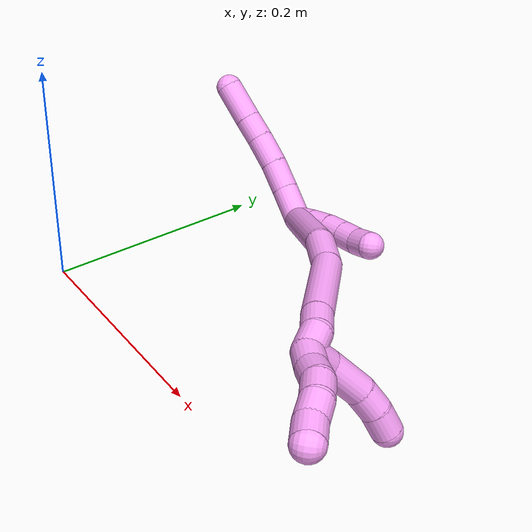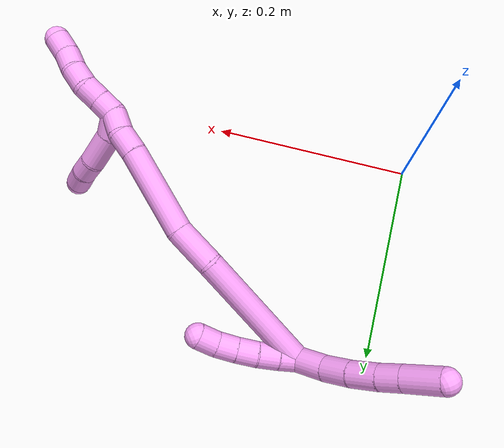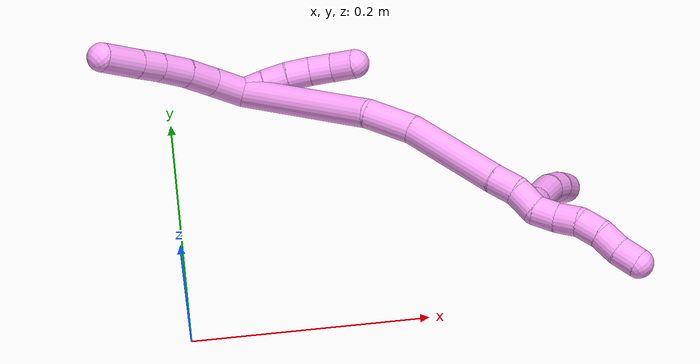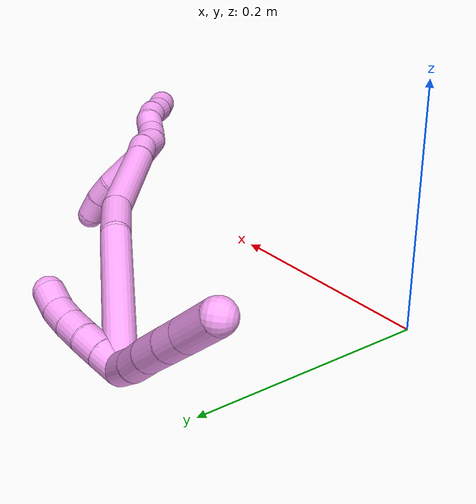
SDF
<sdf version="1.7">
 <world name="default">
  <model name="bin">
   <static>1</static>
   <link name="bottom">
    <collision name="collision-bottom">
     <pose>0 0 -0.01 0 -0 0</pose>
     <geometry><box><size>0.8 0.6 0.02</size></box></geometry>
     <surface>
      <friction><ode><mu>100</mu><mu2>100</mu2></ode></friction>
      <contact><collide_bitmask>65535</collide_bitmask></contact>
     </surface>
    </collision>
   </link>
   <link name="west_wall">
    <collision name="collision-west_wall">
     <pose>-0.41 0 0.1 0 -0 0</pose>
     <geometry><box><size>0.02 0.6 0.2</size></box></geometry>
     <surface>
      <friction><ode><mu>100</mu><mu2>100</mu2></ode></friction>
      <contact><collide_bitmask>65535</collide_bitmask></contact>
     </surface>
    </collision>
   </link>
   <link name="east_wall">
    <collision name="collision-east_wall">
     <pose>0.41 0 0.1 0 -0 0</pose>
     <geometry><box><size>0.02 0.6 0.2</size></box></geometry>
     <surface>
      <friction><ode><mu>100</mu><mu2>100</mu2></ode></friction>
      <contact><collide_bitmask>65535</collide_bitmask></contact>
     </surface>
    </collision>
   </link>
   <link name="south_wall">
    <collision name="collision-south_wall">
     <pose>0 -0.31 0.1 0 -0 0</pose>
     <geometry><box><size>0.8 0.02 0.2</size></box></geometry>
     <surface>
      <friction><ode><mu>100</mu><mu2>100</mu2></ode></friction>
      <contact><collide_bitmask>65535</collide_bitmask></contact>
     </surface>
    </collision>
   </link>
   <link name="north_wall">
    <collision name="collision-north_wall">
     <pose>0 0.31 0.1 0 -0 0</pose>
     <geometry><box><size>0.8 0.02 0.2</size></box></geometry>
     <surface>
      <friction><ode><mu>100</mu><mu2>100</mu2></ode></friction>
      <contact><collide_bitmask>65535</collide_bitmask></contact>
     </surface>
    </collision>
   </link>
  </model>
  <model name="4">
   <static>0</static>
   <link name="4">
    <collision name="collision-cylinder-e_1_2_8">
     <pose>-0.012102 -0.006817 -0.00883 2.48415 -0.82609 -1.81885</pose>
     <geometry><cylinder><radius>0.0125</radius><length>0.032919</length></cylinder></geometry>
     <surface>
      <friction><ode><mu>1.16</mu><mu2>1.16</mu2><slip1>0</slip1><slip2>0</slip2></ode></friction>
      <contact><ode><kp>1e+06</kp><kd>1</kd><max_vel>0</max_vel><min_depth>0.001</min_depth></ode></contact>
     </surface>
    </collision>
    <visual name="visual-cylinder-e_1_2_8">
     <pose>-0.012102 -0.006817 -0.00883 2.48415 -0.82609 -1.81885</pose>
     <geometry><cylinder><radius>0.0125</radius><length>0.032919</length></cylinder></geometry>
     <material><ambient>1 0.65098 0.996078 1</ambient></material>
    </visual>
    <collision name="collision-cylinder-e_2_8_9">
     <pose>-0.033482 -0.020969 -0.025174 2.36824 -0.723651 -1.49781</pose>
     <geometry><cylinder><radius>0.0125</radius><length>0.028022</length></cylinder></geometry>
     <surface>
      <friction><ode><mu>1.16</mu><mu2>1.16</mu2><slip1>0</slip1><slip2>0</slip2></ode></friction>
      <contact><ode><kp>1e+06</kp><kd>1</kd><max_vel>0</max_vel><min_depth>0.001</min_depth></ode></contact>
     </surface>
    </collision>
    <visual name="visual-cylinder-e_2_8_9">
     <pose>-0.033482 -0.020969 -0.025174 2.36824 -0.723651 -1.49781</pose>
     <geometry><cylinder><radius>0.0125</radius><length>0.028022</length></cylinder></geometry>
     <material><ambient>1 0.65098 0.996078 1</ambient></material>
    </visual>
    <collision name="collision-cylinder-e_3_9_10">
     <pose>-0.051571 -0.035864 -0.041495 2.4322 -0.649322 -1.47528</pose>
     <geometry><cylinder><radius>0.0125</radius><length>0.029149</length></cylinder></geometry>
     <surface>
      <friction><ode><mu>1.16</mu><mu2>1.16</mu2><slip1>0</slip1><slip2>0</slip2></ode></friction>
      <contact><ode><kp>1e+06</kp><kd>1</kd><max_vel>0</max_vel><min_depth>0.001</min_depth></ode></contact>
     </surface>
    </collision>
    <visual name="visual-cylinder-e_3_9_10">
     <pose>-0.051571 -0.035864 -0.041495 2.4322 -0.649322 -1.47528</pose>
     <geometry><cylinder><radius>0.0125</radius><length>0.029149</length></cylinder></geometry>
     <material><ambient>1 0.65098 0.996078 1</ambient></material>
    </visual>
    <collision name="collision-cylinder-e_4_10_11">
     <pose>-0.06666 -0.04948 -0.057444 2.43835 -0.59058 -1.38452</pose>
     <geometry><cylinder><radius>0.0125</radius><length>0.022543</length></cylinder></geometry>
     <surface>
      <friction><ode><mu>1.16</mu><mu2>1.16</mu2><slip1>0</slip1><slip2>0</slip2></ode></friction>
      <contact><ode><kp>1e+06</kp><kd>1</kd><max_vel>0</max_vel><min_depth>0.001</min_depth></ode></contact>
     </surface>
    </collision>
    <visual name="visual-cylinder-e_4_10_11">
     <pose>-0.06666 -0.04948 -0.057444 2.43835 -0.59058 -1.38452</pose>
     <geometry><cylinder><radius>0.0125</radius><length>0.022543</length></cylinder></geometry>
     <material><ambient>1 0.65098 0.996078 1</ambient></material>
    </visual>
    <collision name="collision-cylinder-e_5_11_6">
     <pose>-0.083596 -0.065568 -0.076195 2.42892 -0.607136 -1.39915</pose>
     <geometry><cylinder><radius>0.0125</radius><length>0.037367</length></cylinder></geometry>
     <surface>
      <friction><ode><mu>1.16</mu><mu2>1.16</mu2><slip1>0</slip1><slip2>0</slip2></ode></friction>
      <contact><ode><kp>1e+06</kp><kd>1</kd><max_vel>0</max_vel><min_depth>0.001</min_depth></ode></contact>
     </surface>
    </collision>
    <visual name="visual-cylinder-e_5_11_6">
     <pose>-0.083596 -0.065568 -0.076195 2.42892 -0.607136 -1.39915</pose>
     <geometry><cylinder><radius>0.0125</radius><length>0.037367</length></cylinder></geometry>
     <material><ambient>1 0.65098 0.996078 1</ambient></material>
    </visual>
    <collision name="collision-cylinder-e_1_2_12">
     <pose>0.003689 -0.003235 0.008714 0.355448 0.377821 0.068656</pose>
     <geometry><cylinder><radius>0.0125</radius><length>0.02</length></cylinder></geometry>
     <surface>
      <friction><ode><mu>1.16</mu><mu2>1.16</mu2><slip1>0</slip1><slip2>0</slip2></ode></friction>
      <contact><ode><kp>1e+06</kp><kd>1</kd><max_vel>0</max_vel><min_depth>0.001</min_depth></ode></contact>
     </surface>
    </collision>
    <visual name="visual-cylinder-e_1_2_12">
     <pose>0.003689 -0.003235 0.008714 0.355448 0.377821 0.068656</pose>
     <geometry><cylinder><radius>0.0125</radius><length>0.02</length></cylinder></geometry>
     <material><ambient>1 0.65098 0.996078 1</ambient></material>
    </visual>
    <collision name="collision-cylinder-e_2_12_13">
     <pose>0.011648 -0.009406 0.02598 0.330716 0.441165 0.074805</pose>
     <geometry><cylinder><radius>0.0125</radius><length>0.02</length></cylinder></geometry>
     <surface>
      <friction><ode><mu>1.16</mu><mu2>1.16</mu2><slip1>0</slip1><slip2>0</slip2></ode></friction>
      <contact><ode><kp>1e+06</kp><kd>1</kd><max_vel>0</max_vel><min_depth>0.001</min_depth></ode></contact>
     </surface>
    </collision>
    <visual name="visual-cylinder-e_2_12_13">
     <pose>0.011648 -0.009406 0.02598 0.330716 0.441165 0.074805</pose>
     <geometry><cylinder><radius>0.0125</radius><length>0.02</length></cylinder></geometry>
     <material><ambient>1 0.65098 0.996078 1</ambient></material>
    </visual>
    <collision name="collision-cylinder-e_3_13_14">
     <pose>0.021166 -0.014751 0.042697 0.286893 0.552476 0.081847</pose>
     <geometry><cylinder><radius>0.0125</radius><length>0.02</length></cylinder></geometry>
     <surface>
      <friction><ode><mu>1.16</mu><mu2>1.16</mu2><slip1>0</slip1><slip2>0</slip2></ode></friction>
      <contact><ode><kp>1e+06</kp><kd>1</kd><max_vel>0</max_vel><min_depth>0.001</min_depth></ode></contact>
     </surface>
    </collision>
    <visual name="visual-cylinder-e_3_13_14">
     <pose>0.021166 -0.014751 0.042697 0.286893 0.552476 0.081847</pose>
     <geometry><cylinder><radius>0.0125</radius><length>0.02</length></cylinder></geometry>
     <material><ambient>1 0.65098 0.996078 1</ambient></material>
    </visual>
    <collision name="collision-cylinder-e_4_14_15">
     <pose>0.032017 -0.020014 0.058636 0.351888 0.594784 0.108866</pose>
     <geometry><cylinder><radius>0.0125</radius><length>0.02</length></cylinder></geometry>
     <surface>
      <friction><ode><mu>1.16</mu><mu2>1.16</mu2><slip1>0</slip1><slip2>0</slip2></ode></friction>
      <contact><ode><kp>1e+06</kp><kd>1</kd><max_vel>0</max_vel><min_depth>0.001</min_depth></ode></contact>
     </surface>
    </collision>
    <visual name="visual-cylinder-e_4_14_15">
     <pose>0.032017 -0.020014 0.058636 0.351888 0.594784 0.108866</pose>
     <geometry><cylinder><radius>0.0125</radius><length>0.02</length></cylinder></geometry>
     <material><ambient>1 0.65098 0.996078 1</ambient></material>
    </visual>
    <collision name="collision-cylinder-e_5_15_5">
     <pose>0.043181 -0.027717 0.073163 0.622691 0.589594 0.194814</pose>
     <geometry><cylinder><radius>0.0125</radius><length>0.02</length></cylinder></geometry>
     <surface>
      <friction><ode><mu>1.16</mu><mu2>1.16</mu2><slip1>0</slip1><slip2>0</slip2></ode></friction>
      <contact><ode><kp>1e+06</kp><kd>1</kd><max_vel>0</max_vel><min_depth>0.001</min_depth></ode></contact>
     </surface>
    </collision>
    <visual name="visual-cylinder-e_5_15_5">
     <pose>0.043181 -0.027717 0.073163 0.622691 0.589594 0.194814</pose>
     <geometry><cylinder><radius>0.0125</radius><length>0.02</length></cylinder></geometry>
     <material><ambient>1 0.65098 0.996078 1</ambient></material>
    </visual>
    <collision name="collision-cylinder-e_1_2_16">
     <pose>0.04546 -0.038126 0.022687 1.03403 0.797587 0.470322</pose>
     <geometry><cylinder><radius>0.0125</radius><length>0.127042</length></cylinder></geometry>
     <surface>
      <friction><ode><mu>1.16</mu><mu2>1.16</mu2><slip1>0</slip1><slip2>0</slip2></ode></friction>
      <contact><ode><kp>1e+06</kp><kd>1</kd><max_vel>0</max_vel><min_depth>0.001</min_depth></ode></contact>
     </surface>
    </collision>
    <visual name="visual-cylinder-e_1_2_16">
     <pose>0.04546 -0.038126 0.022687 1.03403 0.797587 0.470322</pose>
     <geometry><cylinder><radius>0.0125</radius><length>0.127042</length></cylinder></geometry>
     <material><ambient>1 0.65098 0.996078 1</ambient></material>
    </visual>
    <collision name="collision-cylinder-e_2_16_17">
     <pose>0.109022 -0.083703 0.052597 0.800894 1.05021 0.481018</pose>
     <geometry><cylinder><radius>0.0125</radius><length>0.041732</length></cylinder></geometry>
     <surface>
      <friction><ode><mu>1.16</mu><mu2>1.16</mu2><slip1>0</slip1><slip2>0</slip2></ode></friction>
      <contact><ode><kp>1e+06</kp><kd>1</kd><max_vel>0</max_vel><min_depth>0.001</min_depth></ode></contact>
     </surface>
    </collision>
    <visual name="visual-cylinder-e_2_16_17">
     <pose>0.109022 -0.083703 0.052597 0.800894 1.05021 0.481018</pose>
     <geometry><cylinder><radius>0.0125</radius><length>0.041732</length></cylinder></geometry>
     <material><ambient>1 0.65098 0.996078 1</ambient></material>
    </visual>
    <collision name="collision-cylinder-e_3_17_18">
     <pose>0.165992 -0.108857 0.065301 1.27059 1.12592 0.870958</pose>
     <geometry><cylinder><radius>0.0125</radius><length>0.086119</length></cylinder></geometry>
     <surface>
      <friction><ode><mu>1.16</mu><mu2>1.16</mu2><slip1>0</slip1><slip2>0</slip2></ode></friction>
      <contact><ode><kp>1e+06</kp><kd>1</kd><max_vel>0</max_vel><min_depth>0.001</min_depth></ode></contact>
     </surface>
    </collision>
    <visual name="visual-cylinder-e_3_17_18">
     <pose>0.165992 -0.108857 0.065301 1.27059 1.12592 0.870958</pose>
     <geometry><cylinder><radius>0.0125</radius><length>0.086119</length></cylinder></geometry>
     <material><ambient>1 0.65098 0.996078 1</ambient></material>
    </visual>
    <collision name="collision-cylinder-e_4_18_19">
     <pose>0.215246 -0.130709 0.073087 1.06371 1.14196 0.722741</pose>
     <geometry><cylinder><radius>0.0125</radius><length>0.022839</length></cylinder></geometry>
     <surface>
      <friction><ode><mu>1.16</mu><mu2>1.16</mu2><slip1>0</slip1><slip2>0</slip2></ode></friction>
      <contact><ode><kp>1e+06</kp><kd>1</kd><max_vel>0</max_vel><min_depth>0.001</min_depth></ode></contact>
     </surface>
    </collision>
    <visual name="visual-cylinder-e_4_18_19">
     <pose>0.215246 -0.130709 0.073087 1.06371 1.14196 0.722741</pose>
     <geometry><cylinder><radius>0.0125</radius><length>0.022839</length></cylinder></geometry>
     <material><ambient>1 0.65098 0.996078 1</ambient></material>
    </visual>
    <collision name="collision-cylinder-e_5_19_1">
     <pose>0.2365 -0.137181 0.074708 1.85751 1.35171 1.6406</pose>
     <geometry><cylinder><radius>0.0125</radius><length>0.022268</length></cylinder></geometry>
     <surface>
      <friction><ode><mu>1.16</mu><mu2>1.16</mu2><slip1>0</slip1><slip2>0</slip2></ode></friction>
      <contact><ode><kp>1e+06</kp><kd>1</kd><max_vel>0</max_vel><min_depth>0.001</min_depth></ode></contact>
     </surface>
    </collision>
    <visual name="visual-cylinder-e_5_19_1">
     <pose>0.2365 -0.137181 0.074708 1.85751 1.35171 1.6406</pose>
     <geometry><cylinder><radius>0.0125</radius><length>0.022268</length></cylinder></geometry>
     <material><ambient>1 0.65098 0.996078 1</ambient></material>
    </visual>
    <collision name="collision-cylinder-e_1_1_20">
     <pose>0.256025 -0.142833 0.077759 0.728348 1.04672 0.433006</pose>
     <geometry><cylinder><radius>0.0125</radius><length>0.02</length></cylinder></geometry>
     <surface>
      <friction><ode><mu>1.16</mu><mu2>1.16</mu2><slip1>0</slip1><slip2>0</slip2></ode></friction>
      <contact><ode><kp>1e+06</kp><kd>1</kd><max_vel>0</max_vel><min_depth>0.001</min_depth></ode></contact>
     </surface>
    </collision>
    <visual name="visual-cylinder-e_1_1_20">
     <pose>0.256025 -0.142833 0.077759 0.728348 1.04672 0.433006</pose>
     <geometry><cylinder><radius>0.0125</radius><length>0.02</length></cylinder></geometry>
     <material><ambient>1 0.65098 0.996078 1</ambient></material>
    </visual>
    <collision name="collision-cylinder-e_2_20_21">
     <pose>0.272333 -0.151077 0.085657 0.867752 0.871031 0.424679</pose>
     <geometry><cylinder><radius>0.0125</radius><length>0.02</length></cylinder></geometry>
     <surface>
      <friction><ode><mu>1.16</mu><mu2>1.16</mu2><slip1>0</slip1><slip2>0</slip2></ode></friction>
      <contact><ode><kp>1e+06</kp><kd>1</kd><max_vel>0</max_vel><min_depth>0.001</min_depth></ode></contact>
     </surface>
    </collision>
    <visual name="visual-cylinder-e_2_20_21">
     <pose>0.272333 -0.151077 0.085657 0.867752 0.871031 0.424679</pose>
     <geometry><cylinder><radius>0.0125</radius><length>0.02</length></cylinder></geometry>
     <material><ambient>1 0.65098 0.996078 1</ambient></material>
    </visual>
    <collision name="collision-cylinder-e_3_21_22">
     <pose>0.289233 -0.159332 0.091632 1.07417 1.181 0.759524</pose>
     <geometry><cylinder><radius>0.0125</radius><length>0.02</length></cylinder></geometry>
     <surface>
      <friction><ode><mu>1.16</mu><mu2>1.16</mu2><slip1>0</slip1><slip2>0</slip2></ode></friction>
      <contact><ode><kp>1e+06</kp><kd>1</kd><max_vel>0</max_vel><min_depth>0.001</min_depth></ode></contact>
     </surface>
    </collision>
    <visual name="visual-cylinder-e_3_21_22">
     <pose>0.289233 -0.159332 0.091632 1.07417 1.181 0.759524</pose>
     <geometry><cylinder><radius>0.0125</radius><length>0.02</length></cylinder></geometry>
     <material><ambient>1 0.65098 0.996078 1</ambient></material>
    </visual>
    <collision name="collision-cylinder-e_4_22_23">
     <pose>0.308326 -0.164433 0.093528 1.52186 1.39358 1.34562</pose>
     <geometry><cylinder><radius>0.0125</radius><length>0.02</length></cylinder></geometry>
     <surface>
      <friction><ode><mu>1.16</mu><mu2>1.16</mu2><slip1>0</slip1><slip2>0</slip2></ode></friction>
      <contact><ode><kp>1e+06</kp><kd>1</kd><max_vel>0</max_vel><min_depth>0.001</min_depth></ode></contact>
     </surface>
    </collision>
    <visual name="visual-cylinder-e_4_22_23">
     <pose>0.308326 -0.164433 0.093528 1.52186 1.39358 1.34562</pose>
     <geometry><cylinder><radius>0.0125</radius><length>0.02</length></cylinder></geometry>
     <material><ambient>1 0.65098 0.996078 1</ambient></material>
    </visual>
    <collision name="collision-cylinder-e_5_23_4">
     <pose>0.32764 -0.168987 0.095197 1.05521 1.24401 0.791447</pose>
     <geometry><cylinder><radius>0.0125</radius><length>0.02</length></cylinder></geometry>
     <surface>
      <friction><ode><mu>1.16</mu><mu2>1.16</mu2><slip1>0</slip1><slip2>0</slip2></ode></friction>
      <contact><ode><kp>1e+06</kp><kd>1</kd><max_vel>0</max_vel><min_depth>0.001</min_depth></ode></contact>
     </surface>
    </collision>
    <visual name="visual-cylinder-e_5_23_4">
     <pose>0.32764 -0.168987 0.095197 1.05521 1.24401 0.791447</pose>
     <geometry><cylinder><radius>0.0125</radius><length>0.02</length></cylinder></geometry>
     <material><ambient>1 0.65098 0.996078 1</ambient></material>
    </visual>
    <collision name="collision-cylinder-e_1_1_24">
     <pose>0.24441 -0.12989 0.079604 -1.04484 -0.260088 0.150319</pose>
     <geometry><cylinder><radius>0.0125</radius><length>0.023004</length></cylinder></geometry>
     <surface>
      <friction><ode><mu>1.16</mu><mu2>1.16</mu2><slip1>0</slip1><slip2>0</slip2></ode></friction>
      <contact><ode><kp>1e+06</kp><kd>1</kd><max_vel>0</max_vel><min_depth>0.001</min_depth></ode></contact>
     </surface>
    </collision>
    <visual name="visual-cylinder-e_1_1_24">
     <pose>0.24441 -0.12989 0.079604 -1.04484 -0.260088 0.150319</pose>
     <geometry><cylinder><radius>0.0125</radius><length>0.023004</length></cylinder></geometry>
     <material><ambient>1 0.65098 0.996078 1</ambient></material>
    </visual>
    <collision name="collision-cylinder-e_2_24_25">
     <pose>0.241236 -0.106951 0.09713 -0.83996 -0.012062 0.005386</pose>
     <geometry><cylinder><radius>0.0125</radius><length>0.035796</length></cylinder></geometry>
     <surface>
      <friction><ode><mu>1.16</mu><mu2>1.16</mu2><slip1>0</slip1><slip2>0</slip2></ode></friction>
      <contact><ode><kp>1e+06</kp><kd>1</kd><max_vel>0</max_vel><min_depth>0.001</min_depth></ode></contact>
     </surface>
    </collision>
    <visual name="visual-cylinder-e_2_24_25">
     <pose>0.241236 -0.106951 0.09713 -0.83996 -0.012062 0.005386</pose>
     <geometry><cylinder><radius>0.0125</radius><length>0.035796</length></cylinder></geometry>
     <material><ambient>1 0.65098 0.996078 1</ambient></material>
    </visual>
    <collision name="collision-cylinder-e_3_25_26">
     <pose>0.242832 -0.085658 0.115133 -0.920761 0.179128 -0.089013</pose>
     <geometry><cylinder><radius>0.0125</radius><length>0.020341</length></cylinder></geometry>
     <surface>
      <friction><ode><mu>1.16</mu><mu2>1.16</mu2><slip1>0</slip1><slip2>0</slip2></ode></friction>
      <contact><ode><kp>1e+06</kp><kd>1</kd><max_vel>0</max_vel><min_depth>0.001</min_depth></ode></contact>
     </surface>
    </collision>
    <visual name="visual-cylinder-e_3_25_26">
     <pose>0.242832 -0.085658 0.115133 -0.920761 0.179128 -0.089013</pose>
     <geometry><cylinder><radius>0.0125</radius><length>0.020341</length></cylinder></geometry>
     <material><ambient>1 0.65098 0.996078 1</ambient></material>
    </visual>
    <collision name="collision-cylinder-e_4_26_3">
     <pose>0.247052 -0.068725 0.125942 -1.08342 0.232979 -0.140602</pose>
     <geometry><cylinder><radius>0.0125</radius><length>0.020859</length></cylinder></geometry>
     <surface>
      <friction><ode><mu>1.16</mu><mu2>1.16</mu2><slip1>0</slip1><slip2>0</slip2></ode></friction>
      <contact><ode><kp>1e+06</kp><kd>1</kd><max_vel>0</max_vel><min_depth>0.001</min_depth></ode></contact>
     </surface>
    </collision>
    <visual name="visual-cylinder-e_4_26_3">
     <pose>0.247052 -0.068725 0.125942 -1.08342 0.232979 -0.140602</pose>
     <geometry><cylinder><radius>0.0125</radius><length>0.020859</length></cylinder></geometry>
     <material><ambient>1 0.65098 0.996078 1</ambient></material>
    </visual>
    <collision name="collision-sphere-3">
     <pose>0.24946 -0.059758 0.130695 0 -0 0</pose>
     <geometry><sphere><radius>0.0125</radius></sphere></geometry>
     <surface>
      <friction><ode><mu>1.16</mu><mu2>1.16</mu2><slip1>0</slip1><slip2>0</slip2></ode></friction>
      <contact><ode><kp>1e+06</kp><kd>1</kd><max_vel>0</max_vel><min_depth>0.001</min_depth></ode></contact>
     </surface>
    </collision>
    <visual name="visual-sphere-3">
     <pose>0.24946 -0.059758 0.130695 0 -0 0</pose>
     <geometry><sphere><radius>0.0125</radius></sphere></geometry>
     <material><ambient>1 0.65098 0.996078 1</ambient></material>
    </visual>
    <collision name="collision-sphere-26">
     <pose>0.244644 -0.077691 0.12119 0 -0 0</pose>
     <geometry><sphere><radius>0.0125</radius></sphere></geometry>
     <surface>
      <friction><ode><mu>1.16</mu><mu2>1.16</mu2><slip1>0</slip1><slip2>0</slip2></ode></friction>
      <contact><ode><kp>1e+06</kp><kd>1</kd><max_vel>0</max_vel><min_depth>0.001</min_depth></ode></contact>
     </surface>
    </collision>
    <visual name="visual-sphere-26">
     <pose>0.244644 -0.077691 0.12119 0 -0 0</pose>
     <geometry><sphere><radius>0.0125</radius></sphere></geometry>
     <material><ambient>1 0.65098 0.996078 1</ambient></material>
    </visual>
    <collision name="collision-sphere-25">
     <pose>0.24102 -0.093625 0.109076 0 -0 0</pose>
     <geometry><sphere><radius>0.0125</radius></sphere></geometry>
     <surface>
      <friction><ode><mu>1.16</mu><mu2>1.16</mu2><slip1>0</slip1><slip2>0</slip2></ode></friction>
      <contact><ode><kp>1e+06</kp><kd>1</kd><max_vel>0</max_vel><min_depth>0.001</min_depth></ode></contact>
     </surface>
    </collision>
    <visual name="visual-sphere-25">
     <pose>0.24102 -0.093625 0.109076 0 -0 0</pose>
     <geometry><sphere><radius>0.0125</radius></sphere></geometry>
     <material><ambient>1 0.65098 0.996078 1</ambient></material>
    </visual>
    <collision name="collision-sphere-24">
     <pose>0.241452 -0.120277 0.085185 0 -0 0</pose>
     <geometry><sphere><radius>0.0125</radius></sphere></geometry>
     <surface>
      <friction><ode><mu>1.16</mu><mu2>1.16</mu2><slip1>0</slip1><slip2>0</slip2></ode></friction>
      <contact><ode><kp>1e+06</kp><kd>1</kd><max_vel>0</max_vel><min_depth>0.001</min_depth></ode></contact>
     </surface>
    </collision>
    <visual name="visual-sphere-24">
     <pose>0.241452 -0.120277 0.085185 0 -0 0</pose>
     <geometry><sphere><radius>0.0125</radius></sphere></geometry>
     <material><ambient>1 0.65098 0.996078 1</ambient></material>
    </visual>
    <collision name="collision-sphere-4">
     <pose>0.337111 -0.17178 0.09678 0 -0 0</pose>
     <geometry><sphere><radius>0.0125</radius></sphere></geometry>
     <surface>
      <friction><ode><mu>1.16</mu><mu2>1.16</mu2><slip1>0</slip1><slip2>0</slip2></ode></friction>
      <contact><ode><kp>1e+06</kp><kd>1</kd><max_vel>0</max_vel><min_depth>0.001</min_depth></ode></contact>
     </surface>
    </collision>
    <visual name="visual-sphere-4">
     <pose>0.337111 -0.17178 0.09678 0 -0 0</pose>
     <geometry><sphere><radius>0.0125</radius></sphere></geometry>
     <material><ambient>1 0.65098 0.996078 1</ambient></material>
    </visual>
    <collision name="collision-sphere-23">
     <pose>0.31817 -0.166194 0.093615 0 -0 0</pose>
     <geometry><sphere><radius>0.0125</radius></sphere></geometry>
     <surface>
      <friction><ode><mu>1.16</mu><mu2>1.16</mu2><slip1>0</slip1><slip2>0</slip2></ode></friction>
      <contact><ode><kp>1e+06</kp><kd>1</kd><max_vel>0</max_vel><min_depth>0.001</min_depth></ode></contact>
     </surface>
    </collision>
    <visual name="visual-sphere-23">
     <pose>0.31817 -0.166194 0.093615 0 -0 0</pose>
     <geometry><sphere><radius>0.0125</radius></sphere></geometry>
     <material><ambient>1 0.65098 0.996078 1</ambient></material>
    </visual>
    <collision name="collision-sphere-22">
     <pose>0.298483 -0.162673 0.093442 0 -0 0</pose>
     <geometry><sphere><radius>0.0125</radius></sphere></geometry>
     <surface>
      <friction><ode><mu>1.16</mu><mu2>1.16</mu2><slip1>0</slip1><slip2>0</slip2></ode></friction>
      <contact><ode><kp>1e+06</kp><kd>1</kd><max_vel>0</max_vel><min_depth>0.001</min_depth></ode></contact>
     </surface>
    </collision>
    <visual name="visual-sphere-22">
     <pose>0.298483 -0.162673 0.093442 0 -0 0</pose>
     <geometry><sphere><radius>0.0125</radius></sphere></geometry>
     <material><ambient>1 0.65098 0.996078 1</ambient></material>
    </visual>
    <collision name="collision-sphere-21">
     <pose>0.279983 -0.155991 0.089821 0 -0 0</pose>
     <geometry><sphere><radius>0.0125</radius></sphere></geometry>
     <surface>
      <friction><ode><mu>1.16</mu><mu2>1.16</mu2><slip1>0</slip1><slip2>0</slip2></ode></friction>
      <contact><ode><kp>1e+06</kp><kd>1</kd><max_vel>0</max_vel><min_depth>0.001</min_depth></ode></contact>
     </surface>
    </collision>
    <visual name="visual-sphere-21">
     <pose>0.279983 -0.155991 0.089821 0 -0 0</pose>
     <geometry><sphere><radius>0.0125</radius></sphere></geometry>
     <material><ambient>1 0.65098 0.996078 1</ambient></material>
    </visual>
    <collision name="collision-sphere-20">
     <pose>0.264683 -0.146164 0.081493 0 -0 0</pose>
     <geometry><sphere><radius>0.0125</radius></sphere></geometry>
     <surface>
      <friction><ode><mu>1.16</mu><mu2>1.16</mu2><slip1>0</slip1><slip2>0</slip2></ode></friction>
      <contact><ode><kp>1e+06</kp><kd>1</kd><max_vel>0</max_vel><min_depth>0.001</min_depth></ode></contact>
     </surface>
    </collision>
    <visual name="visual-sphere-20">
     <pose>0.264683 -0.146164 0.081493 0 -0 0</pose>
     <geometry><sphere><radius>0.0125</radius></sphere></geometry>
     <material><ambient>1 0.65098 0.996078 1</ambient></material>
    </visual>
    <collision name="collision-sphere-6">
     <pose>-0.094255 -0.075601 -0.087805 0 -0 0</pose>
     <geometry><sphere><radius>0.0125</radius></sphere></geometry>
     <surface>
      <friction><ode><mu>1.16</mu><mu2>1.16</mu2><slip1>0</slip1><slip2>0</slip2></ode></friction>
      <contact><ode><kp>1e+06</kp><kd>1</kd><max_vel>0</max_vel><min_depth>0.001</min_depth></ode></contact>
     </surface>
    </collision>
    <visual name="visual-sphere-6">
     <pose>-0.094255 -0.075601 -0.087805 0 -0 0</pose>
     <geometry><sphere><radius>0.0125</radius></sphere></geometry>
     <material><ambient>1 0.65098 0.996078 1</ambient></material>
    </visual>
    <collision name="collision-sphere-11">
     <pose>-0.072937 -0.055535 -0.064585 0 -0 0</pose>
     <geometry><sphere><radius>0.0125</radius></sphere></geometry>
     <surface>
      <friction><ode><mu>1.16</mu><mu2>1.16</mu2><slip1>0</slip1><slip2>0</slip2></ode></friction>
      <contact><ode><kp>1e+06</kp><kd>1</kd><max_vel>0</max_vel><min_depth>0.001</min_depth></ode></contact>
     </surface>
    </collision>
    <visual name="visual-sphere-11">
     <pose>-0.072937 -0.055535 -0.064585 0 -0 0</pose>
     <geometry><sphere><radius>0.0125</radius></sphere></geometry>
     <material><ambient>1 0.65098 0.996078 1</ambient></material>
    </visual>
    <collision name="collision-sphere-10">
     <pose>-0.060384 -0.043426 -0.050303 0 -0 0</pose>
     <geometry><sphere><radius>0.0125</radius></sphere></geometry>
     <surface>
      <friction><ode><mu>1.16</mu><mu2>1.16</mu2><slip1>0</slip1><slip2>0</slip2></ode></friction>
      <contact><ode><kp>1e+06</kp><kd>1</kd><max_vel>0</max_vel><min_depth>0.001</min_depth></ode></contact>
     </surface>
    </collision>
    <visual name="visual-sphere-10">
     <pose>-0.060384 -0.043426 -0.050303 0 -0 0</pose>
     <geometry><sphere><radius>0.0125</radius></sphere></geometry>
     <material><ambient>1 0.65098 0.996078 1</ambient></material>
    </visual>
    <collision name="collision-sphere-9">
     <pose>-0.042759 -0.028303 -0.032687 0 -0 0</pose>
     <geometry><sphere><radius>0.0125</radius></sphere></geometry>
     <surface>
      <friction><ode><mu>1.16</mu><mu2>1.16</mu2><slip1>0</slip1><slip2>0</slip2></ode></friction>
      <contact><ode><kp>1e+06</kp><kd>1</kd><max_vel>0</max_vel><min_depth>0.001</min_depth></ode></contact>
     </surface>
    </collision>
    <visual name="visual-sphere-9">
     <pose>-0.042759 -0.028303 -0.032687 0 -0 0</pose>
     <geometry><sphere><radius>0.0125</radius></sphere></geometry>
     <material><ambient>1 0.65098 0.996078 1</ambient></material>
    </visual>
    <collision name="collision-sphere-2">
     <geometry><sphere><radius>0.0125</radius></sphere></geometry>
     <surface>
      <friction><ode><mu>1.16</mu><mu2>1.16</mu2><slip1>0</slip1><slip2>0</slip2></ode></friction>
      <contact><ode><kp>1e+06</kp><kd>1</kd><max_vel>0</max_vel><min_depth>0.001</min_depth></ode></contact>
     </surface>
    </collision>
    <visual name="visual-sphere-2">
     <geometry><sphere><radius>0.0125</radius></sphere></geometry>
     <material><ambient>1 0.65098 0.996078 1</ambient></material>
    </visual>
    <collision name="collision-sphere-19">
     <pose>0.225632 -0.13486 0.075393 0 -0 0</pose>
     <geometry><sphere><radius>0.0125</radius></sphere></geometry>
     <surface>
      <friction><ode><mu>1.16</mu><mu2>1.16</mu2><slip1>0</slip1><slip2>0</slip2></ode></friction>
      <contact><ode><kp>1e+06</kp><kd>1</kd><max_vel>0</max_vel><min_depth>0.001</min_depth></ode></contact>
     </surface>
    </collision>
    <visual name="visual-sphere-19">
     <pose>0.225632 -0.13486 0.075393 0 -0 0</pose>
     <geometry><sphere><radius>0.0125</radius></sphere></geometry>
     <material><ambient>1 0.65098 0.996078 1</ambient></material>
    </visual>
    <collision name="collision-sphere-8">
     <pose>-0.024205 -0.013634 -0.01766 0 -0 0</pose>
     <geometry><sphere><radius>0.0125</radius></sphere></geometry>
     <surface>
      <friction><ode><mu>1.16</mu><mu2>1.16</mu2><slip1>0</slip1><slip2>0</slip2></ode></friction>
      <contact><ode><kp>1e+06</kp><kd>1</kd><max_vel>0</max_vel><min_depth>0.001</min_depth></ode></contact>
     </surface>
    </collision>
    <visual name="visual-sphere-8">
     <pose>-0.024205 -0.013634 -0.01766 0 -0 0</pose>
     <geometry><sphere><radius>0.0125</radius></sphere></geometry>
     <material><ambient>1 0.65098 0.996078 1</ambient></material>
    </visual>
    <collision name="collision-sphere-12">
     <pose>0.007378 -0.006469 0.017427 0 -0 0</pose>
     <geometry><sphere><radius>0.0125</radius></sphere></geometry>
     <surface>
      <friction><ode><mu>1.16</mu><mu2>1.16</mu2><slip1>0</slip1><slip2>0</slip2></ode></friction>
      <contact><ode><kp>1e+06</kp><kd>1</kd><max_vel>0</max_vel><min_depth>0.001</min_depth></ode></contact>
     </surface>
    </collision>
    <visual name="visual-sphere-12">
     <pose>0.007378 -0.006469 0.017427 0 -0 0</pose>
     <geometry><sphere><radius>0.0125</radius></sphere></geometry>
     <material><ambient>1 0.65098 0.996078 1</ambient></material>
    </visual>
    <collision name="collision-sphere-13">
     <pose>0.015918 -0.012342 0.034532 0 -0 0</pose>
     <geometry><sphere><radius>0.0125</radius></sphere></geometry>
     <surface>
      <friction><ode><mu>1.16</mu><mu2>1.16</mu2><slip1>0</slip1><slip2>0</slip2></ode></friction>
      <contact><ode><kp>1e+06</kp><kd>1</kd><max_vel>0</max_vel><min_depth>0.001</min_depth></ode></contact>
     </surface>
    </collision>
    <visual name="visual-sphere-13">
     <pose>0.015918 -0.012342 0.034532 0 -0 0</pose>
     <geometry><sphere><radius>0.0125</radius></sphere></geometry>
     <material><ambient>1 0.65098 0.996078 1</ambient></material>
    </visual>
    <collision name="collision-sphere-14">
     <pose>0.026414 -0.017159 0.050861 0 -0 0</pose>
     <geometry><sphere><radius>0.0125</radius></sphere></geometry>
     <surface>
      <friction><ode><mu>1.16</mu><mu2>1.16</mu2><slip1>0</slip1><slip2>0</slip2></ode></friction>
      <contact><ode><kp>1e+06</kp><kd>1</kd><max_vel>0</max_vel><min_depth>0.001</min_depth></ode></contact>
     </surface>
    </collision>
    <visual name="visual-sphere-14">
     <pose>0.026414 -0.017159 0.050861 0 -0 0</pose>
     <geometry><sphere><radius>0.0125</radius></sphere></geometry>
     <material><ambient>1 0.65098 0.996078 1</ambient></material>
    </visual>
    <collision name="collision-sphere-15">
     <pose>0.03762 -0.022869 0.066412 0 -0 0</pose>
     <geometry><sphere><radius>0.0125</radius></sphere></geometry>
     <surface>
      <friction><ode><mu>1.16</mu><mu2>1.16</mu2><slip1>0</slip1><slip2>0</slip2></ode></friction>
      <contact><ode><kp>1e+06</kp><kd>1</kd><max_vel>0</max_vel><min_depth>0.001</min_depth></ode></contact>
     </surface>
    </collision>
    <visual name="visual-sphere-15">
     <pose>0.03762 -0.022869 0.066412 0 -0 0</pose>
     <geometry><sphere><radius>0.0125</radius></sphere></geometry>
     <material><ambient>1 0.65098 0.996078 1</ambient></material>
    </visual>
    <collision name="collision-sphere-5">
     <pose>0.048741 -0.032564 0.079915 0 -0 0</pose>
     <geometry><sphere><radius>0.0125</radius></sphere></geometry>
     <surface>
      <friction><ode><mu>1.16</mu><mu2>1.16</mu2><slip1>0</slip1><slip2>0</slip2></ode></friction>
      <contact><ode><kp>1e+06</kp><kd>1</kd><max_vel>0</max_vel><min_depth>0.001</min_depth></ode></contact>
     </surface>
    </collision>
    <visual name="visual-sphere-5">
     <pose>0.048741 -0.032564 0.079915 0 -0 0</pose>
     <geometry><sphere><radius>0.0125</radius></sphere></geometry>
     <material><ambient>1 0.65098 0.996078 1</ambient></material>
    </visual>
    <collision name="collision-sphere-16">
     <pose>0.09092 -0.076252 0.045373 0 -0 0</pose>
     <geometry><sphere><radius>0.0125</radius></sphere></geometry>
     <surface>
      <friction><ode><mu>1.16</mu><mu2>1.16</mu2><slip1>0</slip1><slip2>0</slip2></ode></friction>
      <contact><ode><kp>1e+06</kp><kd>1</kd><max_vel>0</max_vel><min_depth>0.001</min_depth></ode></contact>
     </surface>
    </collision>
    <visual name="visual-sphere-16">
     <pose>0.09092 -0.076252 0.045373 0 -0 0</pose>
     <geometry><sphere><radius>0.0125</radius></sphere></geometry>
     <material><ambient>1 0.65098 0.996078 1</ambient></material>
    </visual>
    <collision name="collision-sphere-17">
     <pose>0.127124 -0.091155 0.059821 0 -0 0</pose>
     <geometry><sphere><radius>0.0125</radius></sphere></geometry>
     <surface>
      <friction><ode><mu>1.16</mu><mu2>1.16</mu2><slip1>0</slip1><slip2>0</slip2></ode></friction>
      <contact><ode><kp>1e+06</kp><kd>1</kd><max_vel>0</max_vel><min_depth>0.001</min_depth></ode></contact>
     </surface>
    </collision>
    <visual name="visual-sphere-17">
     <pose>0.127124 -0.091155 0.059821 0 -0 0</pose>
     <geometry><sphere><radius>0.0125</radius></sphere></geometry>
     <material><ambient>1 0.65098 0.996078 1</ambient></material>
    </visual>
    <collision name="collision-sphere-18">
     <pose>0.20486 -0.126558 0.070781 0 -0 0</pose>
     <geometry><sphere><radius>0.0125</radius></sphere></geometry>
     <surface>
      <friction><ode><mu>1.16</mu><mu2>1.16</mu2><slip1>0</slip1><slip2>0</slip2></ode></friction>
      <contact><ode><kp>1e+06</kp><kd>1</kd><max_vel>0</max_vel><min_depth>0.001</min_depth></ode></contact>
     </surface>
    </collision>
    <visual name="visual-sphere-18">
     <pose>0.20486 -0.126558 0.070781 0 -0 0</pose>
     <geometry><sphere><radius>0.0125</radius></sphere></geometry>
     <material><ambient>1 0.65098 0.996078 1</ambient></material>
    </visual>
    <collision name="collision-sphere-1">
     <pose>0.247368 -0.139502 0.074024 0 -0 0</pose>
     <geometry><sphere><radius>0.0125</radius></sphere></geometry>
     <surface>
      <friction><ode><mu>1.16</mu><mu2>1.16</mu2><slip1>0</slip1><slip2>0</slip2></ode></friction>
      <contact><ode><kp>1e+06</kp><kd>1</kd><max_vel>0</max_vel><min_depth>0.001</min_depth></ode></contact>
     </surface>
    </collision>
    <visual name="visual-sphere-1">
     <pose>0.247368 -0.139502 0.074024 0 -0 0</pose>
     <geometry><sphere><radius>0.0125</radius></sphere></geometry>
     <material><ambient>1 0.65098 0.996078 1</ambient></material>
    </visual>
    <inertial>
     <pose>0.110656 -0.075203 0.041363 0 -0 0</pose>
     <mass>0.75</mass>
     <inertia>
      <ixx>0.000237</ixx>
      <ixy>0</ixy>
      <ixz>0</ixz>
      <iyy>0.000264</iyy>
      <iyz>0</iyz>
      <izz>-3.6e-05</izz>
     </inertia>
    </inertial>
   </link>
   <pose>0.065262 0.219674 0.01168 -1.53334 0.254159 -0.888618</pose>
  </model>
 </world>
</sdf>
